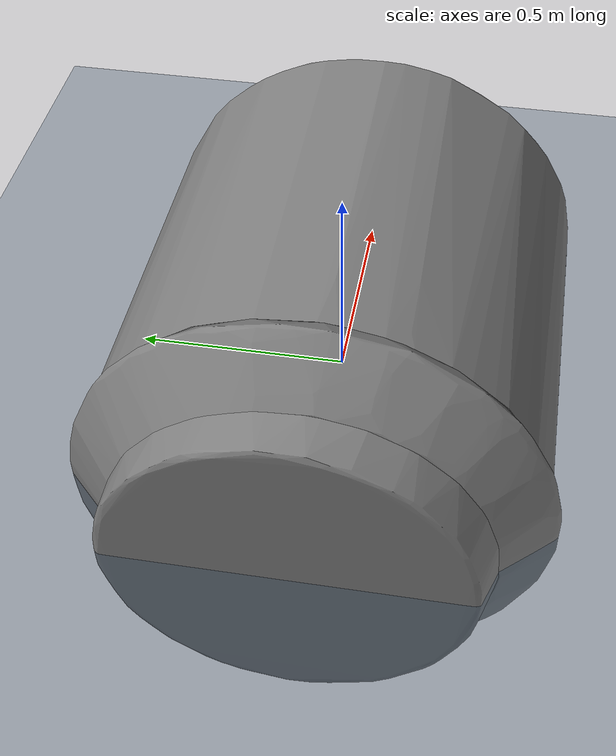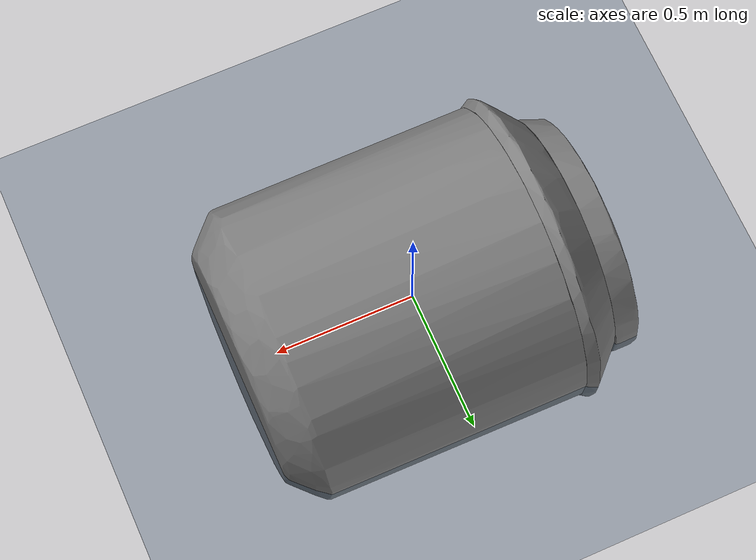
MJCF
<mujoco model="scene">
    <option cone="elliptic" impratio="10"/>
    <statistic center="0.4 0 0.4" extent="1"/>
    <compiler autolimits="true" angle="radian" meshdir="."/>
    <option impratio="10" integrator="implicitfast" cone="elliptic" noslip_iterations="2"/>

    <default>
        <default class="visual">
        <geom group="2" type="mesh" contype="0" conaffinity="0"/>
        </default>
        <default class="collision">
        <geom group="2" type="mesh" condim="4"/>
        </default>
    </default>

    <visual>
        <headlight diffuse="0.6 0.6 0.6" ambient="0.1 0.1 0.1" specular="0 0 0"/>
        <rgba haze="0.15 0.25 0.35 1"/>
        <global azimuth="120" elevation="-20"/>
    </visual>

    <asset>
        <mesh name="convex_piece_001.obj" file="meshes/convex_piece_001.obj"  scale="1.0 1.0 1.0"/>
<mesh name="convex_piece_002.obj" file="meshes/convex_piece_002.obj"  scale="1.0 1.0 1.0"/>
<mesh name="convex_piece_000.obj" file="meshes/convex_piece_000.obj"  scale="1.0 1.0 1.0"/>

        <material name="black" specular="0.5" shininess="0.25" rgba="0.16355 0.16355 0.16355 1"/>
        <texture type="skybox" builtin="gradient" rgb1="0.3 0.5 0.7" rgb2="0 0 0" width="512" height="3072"/>
        <texture type="2d" name="groundplane" builtin="checker" mark="edge" rgb1="0.2 0.3 0.4" rgb2="0.1 0.2 0.3"
        markrgb="0.8 0.8 0.8" width="300" height="300"/>
        <material name="groundplane" texture="groundplane" texuniform="true" texrepeat="5 5" reflectance="0.2"/>
    </asset>

    <worldbody>
        <light name="spotlight1" mode="targetbodycom" target="decomposed" pos="0 -1 2"/>
        <camera name="closeup1" pos="0.5 0.25 1.3" xyaxes="-1 0 0 0 -0.6 0.8"/>
        <camera name="closeup2" pos="0.5 0.0 0.8" xyaxes="1 0 0 0 -1 0"/>
        <camera name="closeup3" pos="0.1 0 1.05" xyaxes="0 -1 0 0 0 1"/>
        <camera name="closeup4"  pos="0.5 0 1.4" xyaxes="0 -1 0 1 0 0"/>
        <camera name="closeup5"  pos="0 -0.3 0.1" xyaxes="1 0 0 0 0 1"/>
        <camera name="closeup" pos="0  -0.3 0.1" xyaxes="1 0 0 0 0 1"/>
        <geom name="floor" size="0 0 0.05" type="plane" material="groundplane"/>
        <body name="decomposed" quat="1 0 0 1" pos="0 0 0">
        <freejoint/>
        <geom mesh="convex_piece_001.obj" name="object_collision_0" class="collision"/>
<geom mesh="convex_piece_002.obj" name="object_collision_1" class="collision"/>
<geom mesh="convex_piece_000.obj" name="object_collision_2" class="collision"/>

        </body>
    </worldbody>
    <keyframe>
        <key name="home" qpos="0 0 0.8 1 0 0 0"/>
    </keyframe>
    </mujoco>
